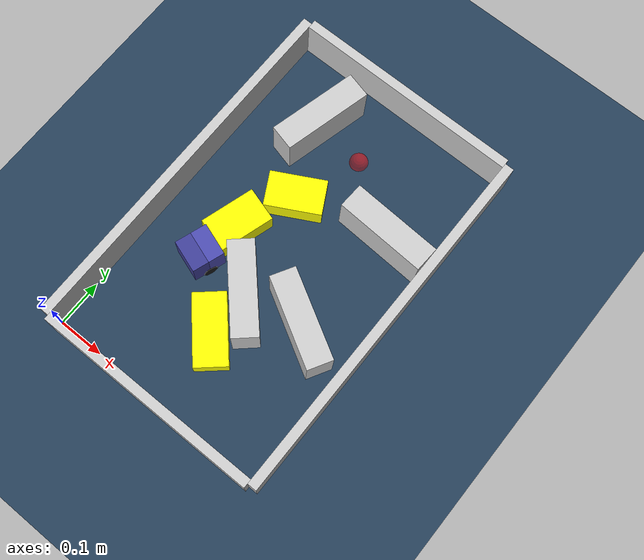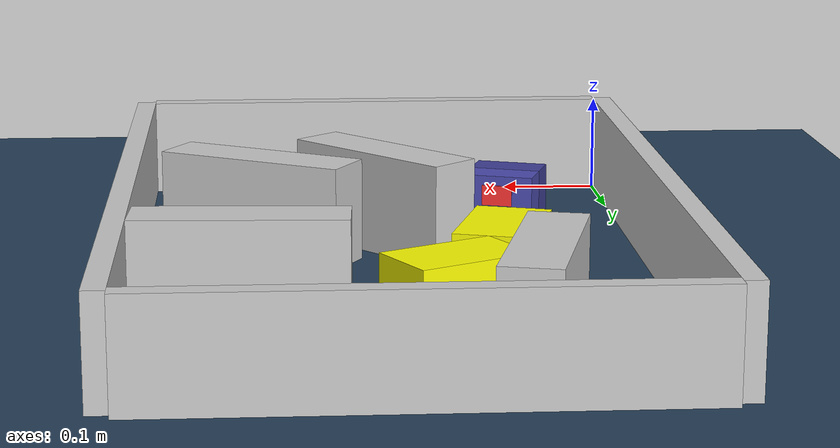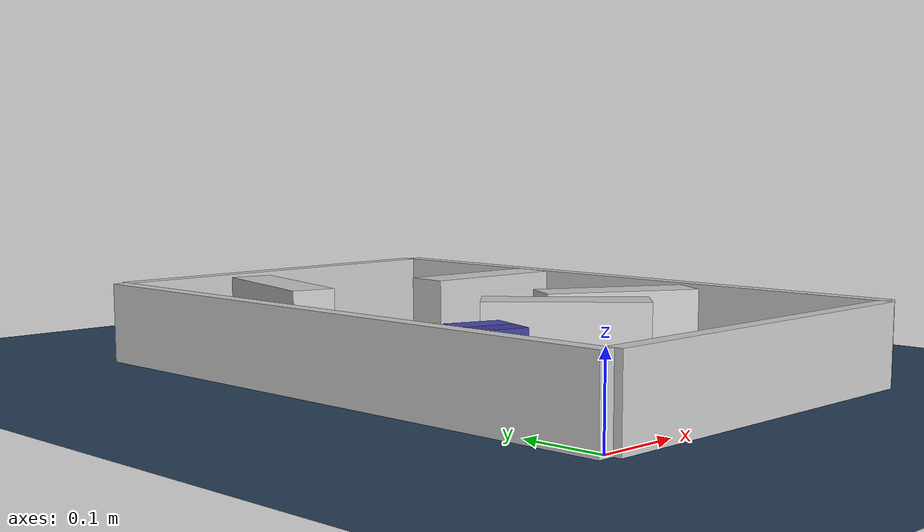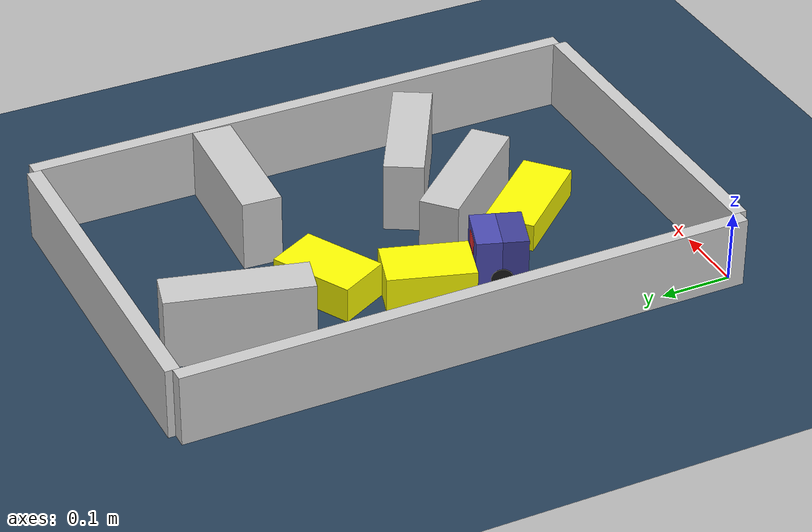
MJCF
<?xml version='1.0' encoding='utf-8'?>
<mujoco model="real_buildable">
  <compiler angle="degree" />
  <option timestep="0.002" integrator="implicitfast" iterations="100" cone="elliptic" />
  <default>
    <geom density="1" />
  </default>
  <asset>
    <texture builtin="gradient" height="3072" rgb1="0.3 0.5 0.7" rgb2="0 0 0" type="skybox" width="512" />
    <texture builtin="checker" height="300" mark="edge" markrgb="0.8 0.8 0.8" name="groundplane" rgb1="0.2 0.3 0.4" rgb2="0.1 0.2 0.3" type="2d" width="300" />
    <material name="groundplane" reflectance="0.2" texrepeat="5 5" texture="groundplane" texuniform="true" />
  </asset>
  <worldbody>
    <light dir="0 0 -1" directional="true" pos="0 0 1.5" />
    <geom name="floor" type="plane" condim="4" friction="0.5 0.005 0.001" material="groundplane" size="0 0 0.05" />
    <body name="walls">
      <geom name="wall_boundary_left" type="box" condim="4" friction="1.0 0.005 0.0001" rgba="0.8 0.8 0.8 1" pos="-0.010000 0.387500 0.050000" euler="0 0 0.000000" size="0.010000 0.397500 0.050000" />
      <geom name="wall_boundary_right" type="box" condim="4" friction="1.0 0.005 0.0001" rgba="0.8 0.8 0.8 1" pos="0.500000 0.387500 0.050000" euler="0 0 0.000000" size="0.010000 0.397500 0.050000" />
      <geom name="wall_boundary_bottom" type="box" condim="4" friction="1.0 0.005 0.0001" rgba="0.8 0.8 0.8 1" pos="0.245000 -0.010000 0.050000" euler="0 0 0.000000" size="0.245000 0.010000 0.050000" />
      <geom name="wall_boundary_top" type="box" condim="4" friction="1.0 0.005 0.0001" rgba="0.8 0.8 0.8 1" pos="0.245000 0.785000 0.050000" euler="0 0 0.000000" size="0.245000 0.010000 0.050000" />
      <geom name="wall_inner_1" type="box" condim="4" friction="1.0 0.005 0.0001" rgba="0.8 0.8 0.8 1" pos="0.372899 0.288295 0.050000" euler="0 0 -29.588602" size="0.097500 0.027500 0.050000" />
      <geom name="wall_inner_2" type="box" condim="4" friction="1.0 0.005 0.0001" rgba="0.8 0.8 0.8 1" pos="0.250287 0.263436 0.050000" euler="0 0 -47.711311" size="0.097500 0.027500 0.050000" />
      <geom name="wall_inner_3" type="box" condim="4" friction="1.0 0.005 0.0001" rgba="0.8 0.8 0.8 1" pos="0.391000 0.535000 0.050000" euler="0 0 177.000000" size="0.097500 0.027500 0.050000" />
      <geom name="wall_inner_4" type="box" condim="4" friction="1.0 0.005 0.0001" rgba="0.8 0.8 0.8 1" pos="0.136000 0.643000 0.050000" euler="0 0 75.800000" size="0.097500 0.027500 0.050000" />
    </body>
    <body name="car" pos="0.12987596859149159 0.27521427633518991 0.01" quat="0.81379817379717467 0 0 0.58114759943097383">
      <freejoint name="car_freejoint" />
      <inertial pos="0 0 0.0375" mass="0.35" diaginertia="0.000266 0.000266 0.000286" />
      <geom name="front_chassis_collision" type="box" pos="0.0175 0 0.0375" size="0.0175 0.035 0.0325" rgba="0.3 0.3 0.7 1" />
      <geom name="rear_chassis_collision" type="box" pos="-0.0175 0 0.0375" size="0.0175 0.035 0.0325" rgba="0.25 0.25 0.6 1" />
      <geom name="front_marker" type="box" pos="0.034 0 0.0505" size="0.002 0.015 0.01" rgba="1 0.2 0.2 1" contype="0" conaffinity="0" />
      <body name="rear_support_body" pos="-0.03 0 0.0025">
        <joint name="rear_caster_joint" type="ball" damping="0.0001" />
        <inertial pos="0 0 0" mass="0.025" diaginertia="0.000001 0.000001 0.000001" />
        <geom name="rear_support" type="sphere" pos="0 0 0" size="0.0025" friction="0 0 0" rgba="0.7 0.1 0.1 1" />
      </body>
      <body name="front_support_body" pos="0.03 0 0.0025">
        <joint name="front_caster_joint" type="ball" damping="0.0001" />
        <inertial pos="0 0 0" mass="0.025" diaginertia="0.000001 0.000001 0.000001" />
        <geom name="front_support" type="sphere" pos="0 0 0" size="0.0025" friction="0 0 0" rgba="0.1 0.7 0.1 1" />
      </body>
      <body name="left_wheel" pos="0 0.0375 0.015">
        <inertial pos="0 0 0" mass="0.05" diaginertia="0.000003 0.000006 0.000003" />
        <joint name="left_wheel_joint" type="hinge" axis="0 1 0" damping="0.01" armature="0.0001" />
        <geom name="left_wheel_collision" type="cylinder" size="0.015 0.0005" euler="90 0 0" rgba="0.1 0.1 0.1 1" />
      </body>
      <body name="right_wheel" pos="0 -0.0375 0.015">
        <inertial pos="0 0 0" mass="0.05" diaginertia="0.000003 0.000006 0.000003" />
        <joint name="right_wheel_joint" type="hinge" axis="0 1 0" damping="0.01" armature="0.0001" />
        <geom name="right_wheel_collision" type="cylinder" size="0.015 0.0005" euler="90 0 0" rgba="0.1 0.1 0.1 1" />
      </body>
    </body>
    <body name="obstacle_0_movable">
      <geom name="obstacle_0_movable" condim="4" pos="0.14185648151441005 0.3724359643973183 0.025000000000000001" friction="1 0.005 0.0001" rgba="1 1 0 1" size="0.037500 0.060000 0.025000" type="box" mass="0.1" quat="0.14732133476549886 0 0 0.98908868375030545" />
      <joint type="free" />
    </body>
    <body name="obstacle_1_movable">
      <geom name="obstacle_1_movable" condim="4" pos="0.19629295928900992 0.49067379342004169 0.025000000000000001" friction="1 0.005 0.0001" rgba="1 1 0 1" size="0.037500 0.060000 0.025000" type="box" mass="0.1" quat="0.85851307390498233 0 0 -0.5127916749852891" />
      <joint type="free" />
    </body>
    <body name="obstacle_2_movable">
      <geom name="obstacle_2_movable" condim="4" pos="0.24242499999999992 0.17002199999999987 0.02" friction="1 0.005 0.0001" rgba="1 1 0 1" size="0.035000 0.075000 0.020000" type="box" mass="0.1" quat="0.93470699241666499 0 0 0.35541924304600137" />
      <joint type="free" />
    </body>
    <site name="goal" type="sphere" pos="0.245000 0.640000 0.0" size="0.02" rgba="1 0 0 0.5" />
  </worldbody>
  <actuator>
    <velocity name="left_wheel_drive" joint="left_wheel_joint" ctrlrange="-25 25" kv="0.75" forcerange="-0.5 0.5" />
    <velocity name="right_wheel_drive" joint="right_wheel_joint" ctrlrange="-25 25" kv="0.75" forcerange="-0.5 0.5" />
  </actuator>
</mujoco>
